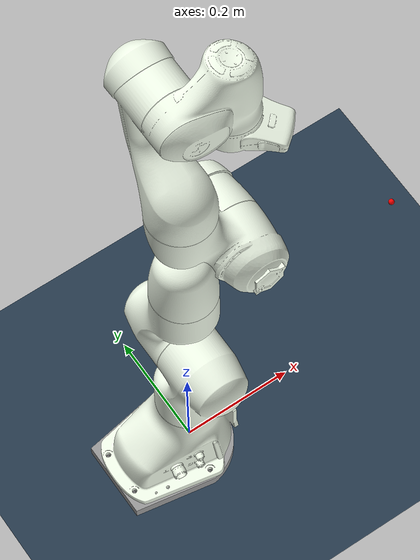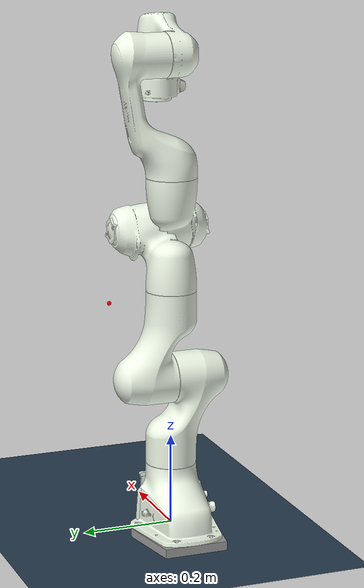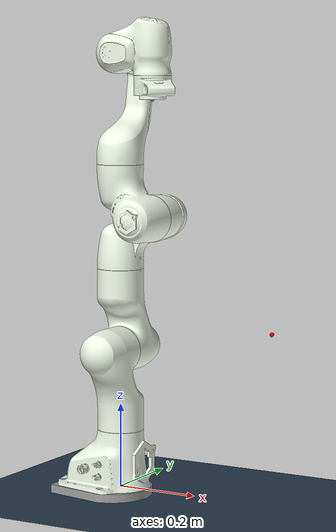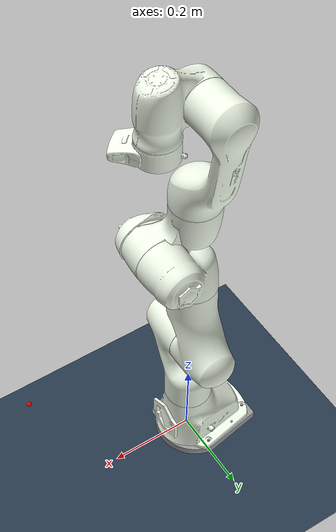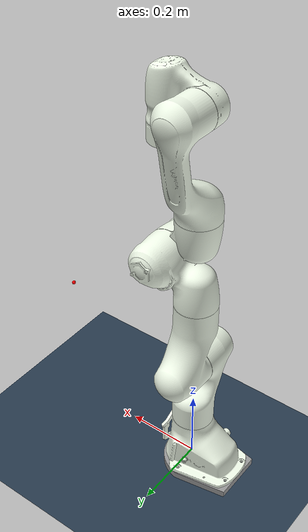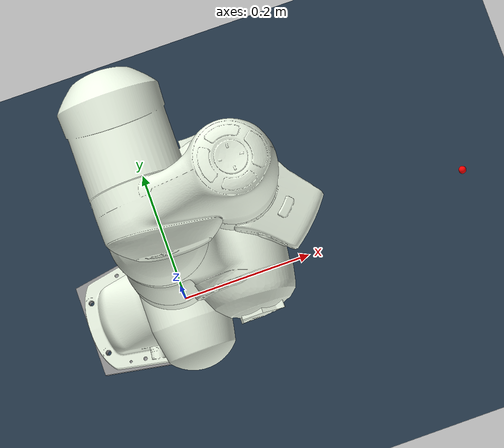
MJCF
<?xml version="1.0" ?>
<mujoco model="mujoco_panda_model">

    <include file="other/simple_scene.xml"/>
    <include file="panda/assets.xml"/>
    <compiler meshdir=""/>

    <option cone="elliptic" gravity="0 0 -9.81" timestep="0.001" integrator="Euler">
        <flag contact="disable"/>

    </option>

    <worldbody>
        <include file="panda/arm_no_gripper.xml"/>

         <body name="target_point" pos = " 0.4 0 0.4 " >
            <joint name="free" pos="0 0 0" />
            <geom type="sphere" size="0.005" rgba="1 0 0 1"/>
            <inertial mass="10" pos="0 0 0" diaginertia="1 1 1"/>
        </body>

    </worldbody>

    <actuator>
        <include file="panda/actuators/torque_no_gripper.xml"/>
    </actuator>

    <sensor>
        <include file="panda/sensors/ft_sensor.xml" />
    </sensor>

</mujoco>

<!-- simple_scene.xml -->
<mujoco>

    <asset>
        <texture name="texplane" type="2d" builtin="checker" rgb1=".2 .3 .4" rgb2=".1 0.15 0.2"
                width="512" height="512"/>
        <material name="MatGnd" reflectance="0.5" texture="texplane" texrepeat="1 1" texuniform="true"/>

    </asset>

    <worldbody>
        <light pos="0 0 1000" castshadow="false"/>
        <geom name="world_frame" pos="0 0 -0.02" size="5 5 10" material="MatGnd" type="plane" contype="1" conaffinity="1"/>

    </worldbody>
</mujoco>

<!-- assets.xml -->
<mujoco>

    <compiler angle="radian"/>

    <asset>
        <mesh name="link0_collision" file="meshes/visual/link0.stl"/>
        <mesh name="link1_collision" file="meshes/visual/link1.stl"/>
        <mesh name="link2_collision" file="meshes/visual/link2.stl"/>
        <mesh name="link3_collision" file="meshes/visual/link3.stl"/>
        <mesh name="link4_collision" file="meshes/visual/link4.stl"/>
        <mesh name="link5_collision" file="meshes/visual/link5.stl"/>
        <mesh name="link6_collision" file="meshes/visual/link6.stl"/>
        <mesh name="link7_collision" file="meshes/visual/link7.stl"/>
        <mesh name="hand_collision" file="meshes/visual/hand.stl"/>

        <mesh name="base_flange_collision" file="meshes/other/base_flange.stl"/>
        <mesh name="finger_collision" file="meshes/collision/finger.stl" scale='1.75 1.0 1.75'/>
        <mesh name="link0_visual" file="meshes/visual/link0.stl"/>
        <mesh name="link1_visual" file="meshes/visual/link1.stl"/>
        <mesh name="link2_visual" file="meshes/visual/link2.stl"/>
        <mesh name="link3_visual" file="meshes/visual/link3.stl"/>
        <mesh name="link4_visual" file="meshes/visual/link4.stl"/>
        <mesh name="link5_visual" file="meshes/visual/link5.stl"/>
        <mesh name="link6_visual" file="meshes/visual/link6.stl"/>
        <mesh name="link7_visual" file="meshes/visual/link7.stl"/>
        <mesh name="hand_visual" file="meshes/visual/hand.stl"/>
        <mesh name="base_flange_visual" file="meshes/other/base_flange.stl"/>
        <mesh name="finger_visual" file="meshes/collision/finger.stl" scale='1.75 1.0 1.75'/>
    </asset>

    <visual>
    <map force="0.1" zfar="30"/>
    <rgba haze="0.15 0.25 0.35 1"/>
    <quality shadowsize="4096"/>
    <global offwidth="400" offheight="400"/>
	<scale framelength="0.5" framewidth="0.04"/>
    </visual>

    <default>
        <default class="panda">

            <joint pos="0 0 0" axis="0 0 1" limited="true" damping="0" frictionloss="0"/>
            <position forcelimited="true" ctrllimited="true" user="1002 40 2001 -0.005 0.005"/>
            <default class="visual">
                <geom contype="0" conaffinity="0" group="0" type="mesh" rgba=".95 .99 .92 1" mass="0"/>
            </default>

            <default class="collision">
                <geom contype="1" conaffinity="1" group="3" type="mesh" rgba=".5 .6 .7 1"/>
            </default>
             <default class="panda_finger">
                <joint damping="100" armature='5'/>
            </default>
        </default>
    </default>
</mujoco>

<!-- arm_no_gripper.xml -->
<mujoco>

<body name="panda_base_flange" childclass="panda" >
   <inertial pos="-0.044431 0 -0.010012" mass="1.901909" fullinertia="4.372e-3 6.993e-3 1.124e-2 3.340e-17 1041.745e-9  1.962e-18 " />
   <geom class="visual" mesh="base_flange_visual"  rgba=".6 .6 .6 1"/>
   <geom class="collision" mesh="base_flange_collision"/>
   <site name="base_FT" pos="0 0 -0.02" type="sphere" size="0.001"/>

    <body name="panda_link0" pos="0 0 0">
        <inertial pos="0 0 0" mass="3.06" diaginertia="0.3 0.3 0.3" />
        <geom class="visual" mesh="link0_visual"/>
        <geom class="collision" mesh="link0_collision"/>

        <body name="panda_link1" pos="0 0 0.333">
            <inertial pos="3.875e-03 2.081e-03 -0.1750" mass="4.970684" fullinertia="7.0337e-01 7.0661e-01 9.1170e-03 -1.3900e-04 6.7720e-03 1.9169e-02" />
            <joint name="panda_joint1" pos="0 0 -0.195" range="-2.8973 2.8973" armature="1" />
            <joint name="joint1_spring" pos="0 0 -0.195" range="-2.8973 2.8973" stiffness="14000" damping="1000"/>
            <geom class="visual" mesh="link1_visual"/>
            <geom class="collision" mesh="link1_collision"/>
            <site name="joint1_torque" pos="0 0 -0.195" type="sphere" size="0.001"/>

            <body name="panda_link2" pos="0 0 0" quat="0.707107 -0.707107 0 0">
                <inertial pos="-3.141e-03 -2.872e-02 3.495e-03" mass="0.646926" fullinertia="7.9620e-03 2.8110e-02 2.5995e-02 -3.9250e-03 1.0254e-02 7.0400e-04" />
                <joint name="panda_joint2" range="-1.7628 1.7628" armature="1" />
                <joint name="joint2_spring" range="-1.7628 1.7628" stiffness="14000" damping="1000"/>
                <geom class="visual" mesh="link2_visual"/>
                <geom class="collision" mesh="link2_collision"/>
                <site name="joint2_torque" pos="0 0 0" type="sphere" size="0.001"/>

                <body name="panda_link3" pos="0 -0.316 0" quat="0.707107 0.707107 0 0">
                    <inertial pos="2.7518e-02 3.9252e-02 -6.6502e-02" mass="3.228604" fullinertia="3.7242e-02 3.6155e-02 1.0830e-02 -4.7610e-03 -1.1396e-02 -1.2805e-02" />
                    <joint name="panda_joint3" pos="0 0 -0.1225" range="-2.8973 2.8973" armature="1" />
                    <joint name="joint3_spring" pos="0 0 -0.1225" range="-2.8973 2.8973" stiffness="14000" damping="1000"/>
                    <geom class="visual" mesh="link3_visual"/>
                    <geom class="collision" mesh="link3_collision"/>
                    <site name="joint3_torque" pos="0 0 -0.1225" type="sphere" size="0.001"/>

                    <body name="panda_link4" pos="0.0825 0 0" quat="0.707107 0.707107 0 0">
                        <inertial pos="-5.317e-02 1.04419e-01 2.7454e-02" mass="3.587895" fullinertia="2.5853e-02 1.9552e-02 2.8323e-02 7.7960e-03 -1.3320e-03 8.6410e-03" />
                        <joint name="panda_joint4" range="-3.0718 0" armature="1" />
                        <joint name="joint4_spring" range="-3.0718 1" stiffness="14000" damping="1000"/>
                        <geom class="visual" mesh="link4_visual"/>
                        <geom class="collision" mesh="link4_collision"/>
                        <site name="joint4_torque" pos="0 0 0" type="sphere" size="0.001"/>

                        <body name="panda_link5" pos="-0.0825 0.384 0" quat="0.707107 -0.707107 0 0">
                            <inertial pos="-1.1953e-02 4.1065e-02 -3.8437e-02" mass="1.225946" fullinertia="3.5549e-02 2.9474e-02 8.6270e-03 -2.1170e-03 -4.0370e-03 2.2900e-04" />
                            <joint name="panda_joint5" pos="0 0 -0.26" range="-2.8973 2.8973" armature="0.8" />
                            <joint name="joint5_spring" pos="0 0 -0.26" range="-2.8973 2.8973" stiffness="9000" damping="1000"/>
                            <geom class="visual" mesh="link5_visual"/>
                            <geom class="collision" mesh="link5_collision"/>
                            <site name="joint5_torque" pos="0 0 -0.26" type="sphere" size="0.001"/>

                            <body name="panda_link6" pos="0 0 0" quat="0.707107 0.707107 0 0">
                                <inertial pos="6.0149e-02 -1.4117e-02 -1.0517e-02" mass="1.666555" fullinertia="1.9640e-03 4.3540e-03 5.4330e-03 1.0900e-04 -1.1580e-03 3.4100e-04" />
                                <joint name="panda_joint6"  range="-0.0175 3.7525 	" armature="0.8" />
                                <joint name="joint6_spring" range="-0.0175 3.7525" stiffness="9000" damping="1000"/>
                                <geom class="visual" mesh="link6_visual"/>
                                <geom class="collision" mesh="link6_collision"/>
                                <site name="joint6_torque" pos="0 0 0" type="sphere" size="0.001"/>

                                <body name="panda_link7" pos="0.088 0 0" euler='1.57079632679 0 0'>
                                    <inertial pos="1.0517e-02 -4.252e-03 6.1597e-02" mass="7.35522e-01" fullinertia="1.2516e-02 1.0027e-02 4.8150e-03 -4.2800e-04 -1.1960e-03 -7.4100e-04" />
                                    <joint name="panda_joint7"  pos = "0 0 0.052" range="-2.8973 2.8973" armature="0.8" />
                                    <joint name="joint7_spring" pos = "0 0 0.052" range="-2.8973 2.8973" stiffness="9000" damping="1000"/>
                                    <geom class="visual" mesh="link7_visual"/>
                                    <geom class="collision" mesh="link7_collision"/>
                                    <site name="joint7_torque" pos="0 0 0.052" type="sphere" size="0.01"/>

                                    <site name='ee_site' pos='0 0 0.107' size="0.005" euler='0 0 -1.57'/>

                                </body>
                            </body>
                        </body>
                    </body>
                </body>
            </body>
        </body>
    </body>
    </body>
</mujoco>

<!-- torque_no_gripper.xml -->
<mujoco>
    <motor name="arm_direct_actuator_1" joint="panda_joint1" class="panda" forcerange="-87 87" ctrlrange="-87 87"/>
    <motor name="arm_direct_actuator_2" joint="panda_joint2" class="panda" forcerange="-87 87" ctrlrange="-87 87"/>
    <motor name="arm_direct_actuator_3" joint="panda_joint3" class="panda" forcerange="-87 87" ctrlrange="-87 87"/>
    <motor name="arm_direct_actuator_4" joint="panda_joint4" class="panda" forcerange="-87 87" ctrlrange="-87 87"/>
    <motor name="arm_direct_actuator_5" joint="panda_joint5" class="panda" forcerange="-12 12" ctrlrange="-12 12"/>
    <motor name="arm_direct_actuator_6" joint="panda_joint6" class="panda" forcerange="-12 12" ctrlrange="-12 12"/>
    <motor name="arm_direct_actuator_7" joint="panda_joint7" class="panda" forcerange="-12 12" ctrlrange="-12 12"/>
</mujoco>

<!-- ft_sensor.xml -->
<mujoco>
  <torque name="joint1_torque_sensor" site="joint1_torque"/>
  <torque name="joint2_torque_sensor" site="joint2_torque"/>
  <torque name="joint3_torque_sensor" site="joint3_torque"/>
  <torque name="joint4_torque_sensor" site="joint4_torque"/>
  <torque name="joint5_torque_sensor" site="joint5_torque"/>
  <torque name="joint6_torque_sensor" site="joint6_torque"/>
  <torque name="joint7_torque_sensor" site="joint7_torque"/>
  <framepos name="ee_pos" objtype="site" objname="ee_site"/>
  <framequat name="ee_quat" objtype="site" objname="ee_site"/>
  <force name="F_sensor" site="base_FT"/>
  <torque name="T_sensor" site="base_FT"/>

</mujoco>
